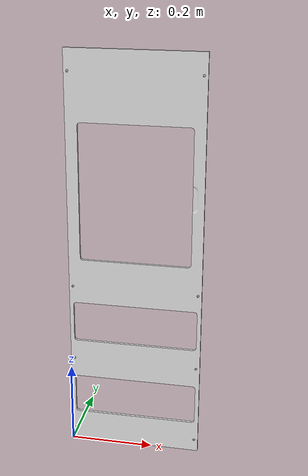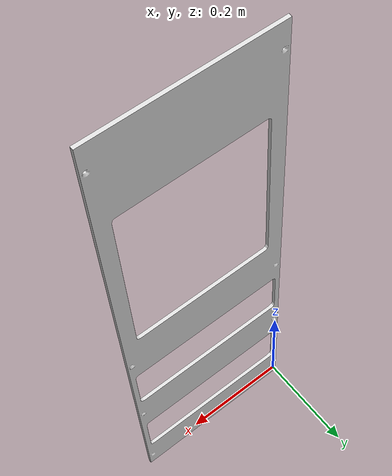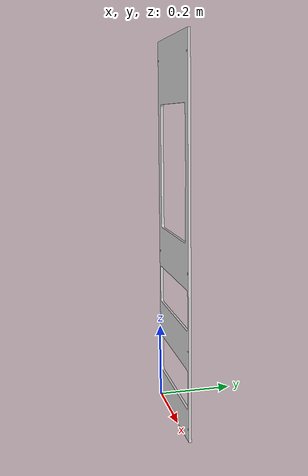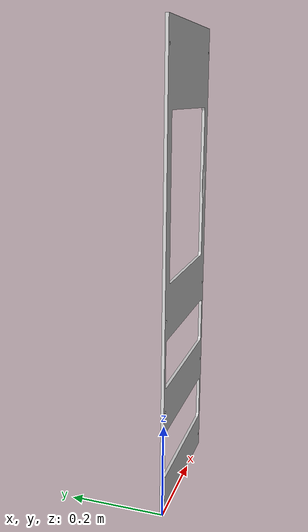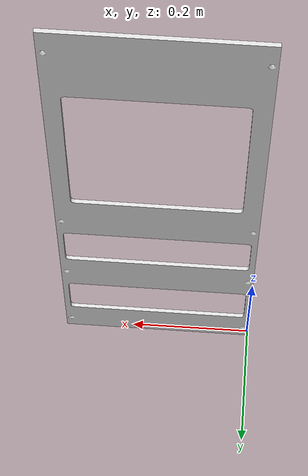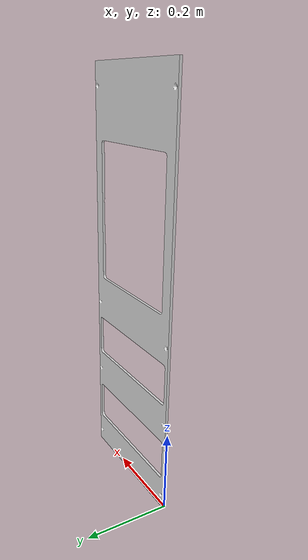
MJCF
<mujoco model="side_top_face">
  <default>
    <default class="visual">
      <geom group="2" type="mesh" contype="0" conaffinity="0"/>
    </default>
    <default class="collision">
      <geom group="3" type="mesh"/>
    </default>
  </default>
  <asset>
    <material name="mtl_side_top_face" specular="0.20000000000000004" shininess="1.0" rgba="0.85098039 0.85098039 0.85098039 1.0"/>
    <mesh file="side_top_face.obj"/>
  </asset>
  <worldbody>
    <body name="side_top_face">
      <geom material="mtl_side_top_face" mesh="side_top_face" class="visual"/>
      <geom mesh="side_top_face" class="collision"/>
    </body>
  </worldbody>
</mujoco>
